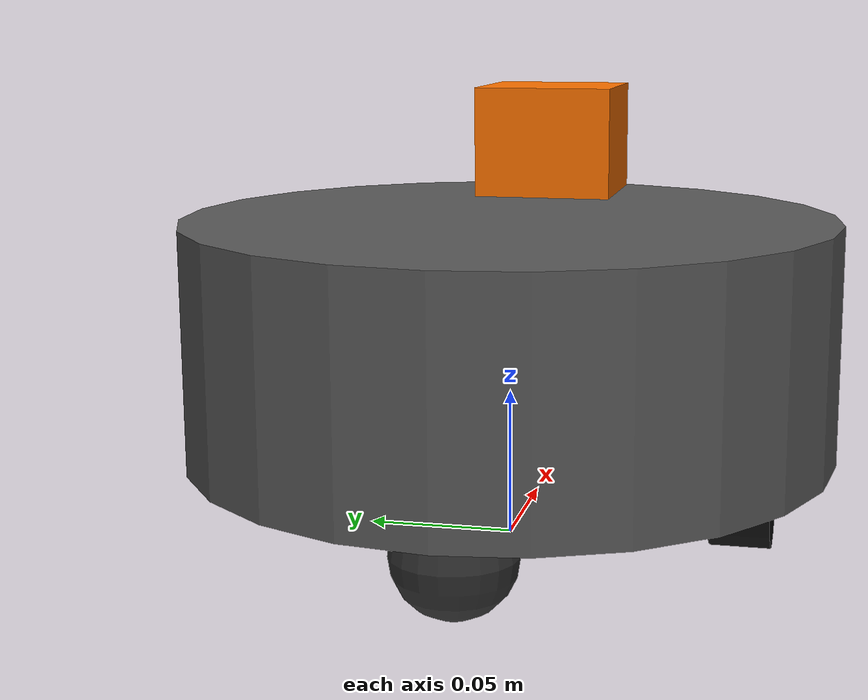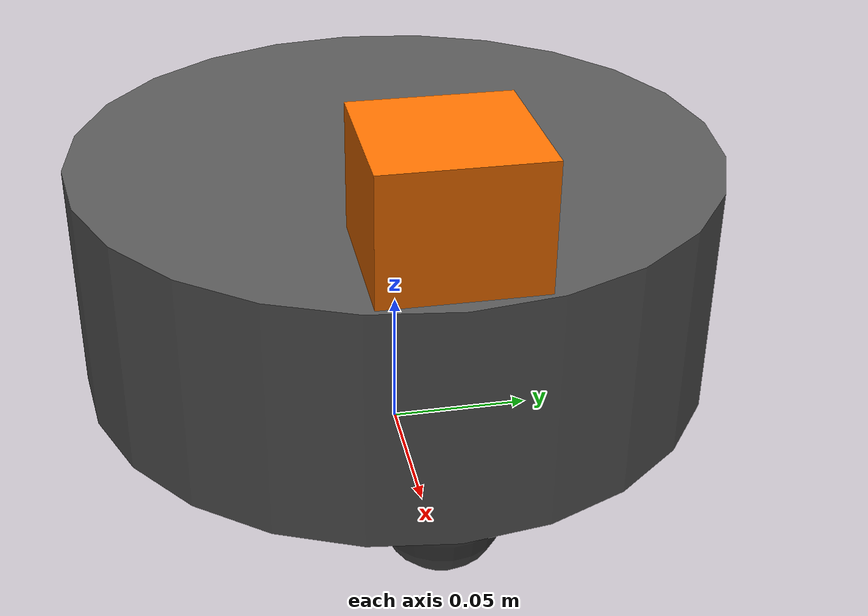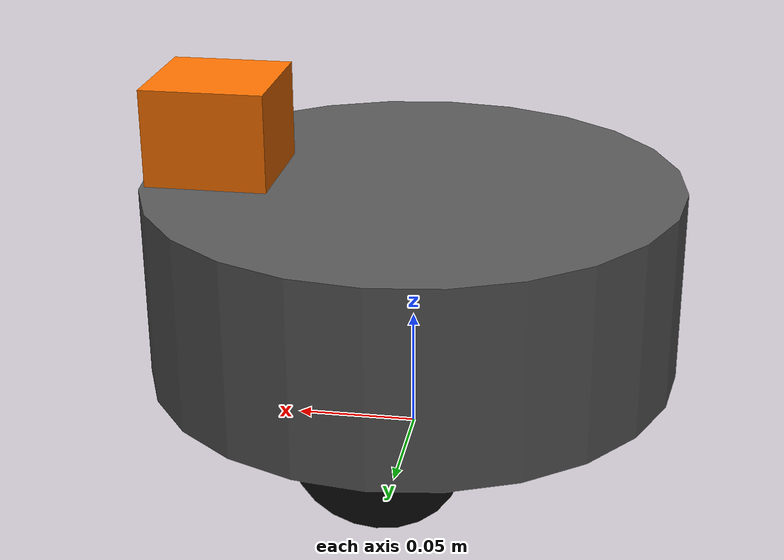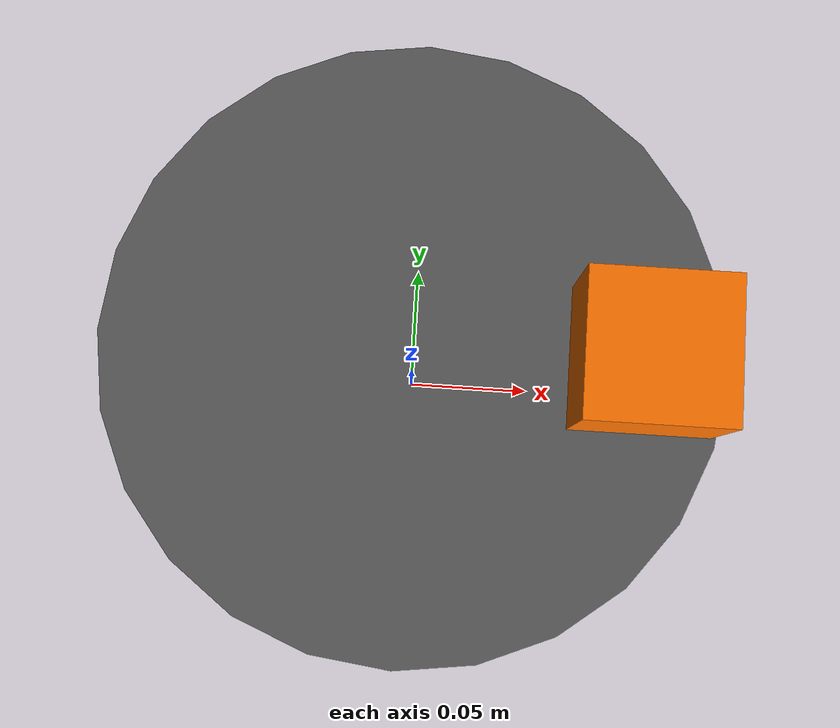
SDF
<?xml version="1.0"?>
<sdf version="1.10">
  <model name="turtlebot3_burger_like">
    <pose>0 0 0 0 0 0</pose>

    <link name="base_footprint"/>

    <joint name="base_fixed_joint" type="fixed">
      <parent>base_footprint</parent>
      <child>base_link</child>
    </joint>

    <link name="base_link">
      <pose>0 0 0.07 0 0 0</pose>
      <inertial>
        <mass>2.4</mass>
        <inertia>
          <ixx>0.025</ixx>
          <iyy>0.025</iyy>
          <izz>0.040</izz>
          <ixy>0.0</ixy>
          <ixz>0.0</ixz>
          <iyz>0.0</iyz>
        </inertia>
      </inertial>
      <collision name="base_collision">
        <geometry>
          <cylinder>
            <radius>0.11</radius>
            <length>0.08</length>
          </cylinder>
        </geometry>
      </collision>
      <visual name="base_visual">
        <geometry>
          <cylinder>
            <radius>0.11</radius>
            <length>0.08</length>
          </cylinder>
        </geometry>
        <material>
          <ambient>0.35 0.35 0.35 1</ambient>
          <diffuse>0.35 0.35 0.35 1</diffuse>
        </material>
      </visual>
    </link>

    <link name="left_wheel">
      <pose>0 0.08 0.035 1.5708 0 0</pose>
      <inertial>
        <mass>0.15</mass>
        <inertia>
          <ixx>0.0002</ixx>
          <iyy>0.0002</iyy>
          <izz>0.0001</izz>
          <ixy>0.0</ixy>
          <ixz>0.0</ixz>
          <iyz>0.0</iyz>
        </inertia>
      </inertial>
      <collision name="left_wheel_collision">
        <geometry>
          <cylinder>
            <radius>0.033</radius>
            <length>0.02</length>
          </cylinder>
        </geometry>
        <surface>
          <friction>
            <ode>
              <mu>1.5</mu>
              <mu2>1.5</mu2>
            </ode>
          </friction>
        </surface>
      </collision>
      <visual name="left_wheel_visual">
        <geometry>
          <cylinder>
            <radius>0.033</radius>
            <length>0.02</length>
          </cylinder>
        </geometry>
        <material>
          <ambient>0.05 0.05 0.05 1</ambient>
          <diffuse>0.05 0.05 0.05 1</diffuse>
        </material>
      </visual>
    </link>

    <link name="right_wheel">
      <pose>0 -0.08 0.035 1.5708 0 0</pose>
      <inertial>
        <mass>0.15</mass>
        <inertia>
          <ixx>0.0002</ixx>
          <iyy>0.0002</iyy>
          <izz>0.0001</izz>
          <ixy>0.0</ixy>
          <ixz>0.0</ixz>
          <iyz>0.0</iyz>
        </inertia>
      </inertial>
      <collision name="right_wheel_collision">
        <geometry>
          <cylinder>
            <radius>0.033</radius>
            <length>0.02</length>
          </cylinder>
        </geometry>
        <surface>
          <friction>
            <ode>
              <mu>1.5</mu>
              <mu2>1.5</mu2>
            </ode>
          </friction>
        </surface>
      </collision>
      <visual name="right_wheel_visual">
        <geometry>
          <cylinder>
            <radius>0.033</radius>
            <length>0.02</length>
          </cylinder>
        </geometry>
        <material>
          <ambient>0.05 0.05 0.05 1</ambient>
          <diffuse>0.05 0.05 0.05 1</diffuse>
        </material>
      </visual>
    </link>

    <joint name="left_wheel_joint" type="revolute">
      <parent>base_link</parent>
      <child>left_wheel</child>
      <axis>
        <xyz>0 0 1</xyz>
        <limit>
          <lower>-1e16</lower>
          <upper>1e16</upper>
        </limit>
      </axis>
    </joint>

    <joint name="right_wheel_joint" type="revolute">
      <parent>base_link</parent>
      <child>right_wheel</child>
      <axis>
        <xyz>0 0 1</xyz>
        <limit>
          <lower>-1e16</lower>
          <upper>1e16</upper>
        </limit>
      </axis>
    </joint>

    <link name="front_caster">
      <pose>0.08 0 0.02 0 0 0</pose>
      <inertial>
        <mass>0.05</mass>
        <inertia>
          <ixx>0.00002</ixx>
          <iyy>0.00002</iyy>
          <izz>0.00002</izz>
          <ixy>0.0</ixy>
          <ixz>0.0</ixz>
          <iyz>0.0</iyz>
        </inertia>
      </inertial>
      <collision name="front_caster_collision">
        <geometry>
          <sphere>
            <radius>0.02</radius>
          </sphere>
        </geometry>
        <surface>
          <friction>
            <ode>
              <mu>0.01</mu>
              <mu2>0.01</mu2>
            </ode>
          </friction>
        </surface>
      </collision>
      <visual name="front_caster_visual">
        <geometry>
          <sphere>
            <radius>0.02</radius>
          </sphere>
        </geometry>
        <material>
          <ambient>0.2 0.2 0.2 1</ambient>
          <diffuse>0.2 0.2 0.2 1</diffuse>
        </material>
      </visual>
    </link>

    <joint name="front_caster_joint" type="ball">
      <parent>base_link</parent>
      <child>front_caster</child>
    </joint>

    <link name="rear_caster">
      <pose>-0.08 0 0.02 0 0 0</pose>
      <inertial>
        <mass>0.05</mass>
        <inertia>
          <ixx>0.00002</ixx>
          <iyy>0.00002</iyy>
          <izz>0.00002</izz>
          <ixy>0.0</ixy>
          <ixz>0.0</ixz>
          <iyz>0.0</iyz>
        </inertia>
      </inertial>
      <collision name="rear_caster_collision">
        <geometry>
          <sphere>
            <radius>0.02</radius>
          </sphere>
        </geometry>
        <surface>
          <friction>
            <ode>
              <mu>0.01</mu>
              <mu2>0.01</mu2>
            </ode>
          </friction>
        </surface>
      </collision>
      <visual name="rear_caster_visual">
        <geometry>
          <sphere>
            <radius>0.02</radius>
          </sphere>
        </geometry>
        <material>
          <ambient>0.2 0.2 0.2 1</ambient>
          <diffuse>0.2 0.2 0.2 1</diffuse>
        </material>
      </visual>
    </link>

    <joint name="rear_caster_joint" type="ball">
      <parent>base_link</parent>
      <child>rear_caster</child>
    </joint>

    <link name="laser_frame">
      <pose>0.08 0 0.13 0 0 0</pose>
      <inertial>
        <mass>0.05</mass>
        <inertia>
          <ixx>0.00002</ixx>
          <iyy>0.00002</iyy>
          <izz>0.00002</izz>
          <ixy>0.0</ixy>
          <ixz>0.0</ixz>
          <iyz>0.0</iyz>
        </inertia>
      </inertial>
      <sensor name="scan" type="gpu_lidar">
        <always_on>true</always_on>
        <update_rate>10</update_rate>
        <visualize>true</visualize>
        <topic>/scan</topic>
        <gz_frame_id>laser_frame</gz_frame_id>
        <lidar>
          <scan>
            <horizontal>
              <samples>720</samples>
              <resolution>1</resolution>
              <min_angle>-3.14159</min_angle>
              <max_angle>3.14159</max_angle>
            </horizontal>
          </scan>
          <range>
            <min>0.12</min>
            <max>8.0</max>
            <resolution>0.01</resolution>
          </range>
        </lidar>
      </sensor>
      <visual name="laser_visual">
        <geometry>
          <box>
            <size>0.05 0.05 0.04</size>
          </box>
        </geometry>
        <material>
          <ambient>1.0 0.45 0.0 1</ambient>
          <diffuse>1.0 0.45 0.0 1</diffuse>
        </material>
      </visual>
    </link>

    <joint name="laser_joint" type="fixed">
      <parent>base_link</parent>
      <child>laser_frame</child>
    </joint>

    <plugin filename="gz-sim-diff-drive-system" name="gz::sim::systems::DiffDrive">
      <left_joint>left_wheel_joint</left_joint>
      <right_joint>right_wheel_joint</right_joint>
      <wheel_separation>0.16</wheel_separation>
      <wheel_radius>0.033</wheel_radius>
      <odom_publish_frequency>50</odom_publish_frequency>
      <topic>cmd_vel</topic>
      <odom_topic>/odom</odom_topic>
      <frame_id>odom</frame_id>
      <child_frame_id>base_footprint</child_frame_id>
      <min_linear_velocity>-0.6</min_linear_velocity>
      <max_linear_velocity>0.6</max_linear_velocity>
      <min_angular_velocity>-2.5</min_angular_velocity>
      <max_angular_velocity>2.5</max_angular_velocity>
    </plugin>
  </model>
</sdf>
